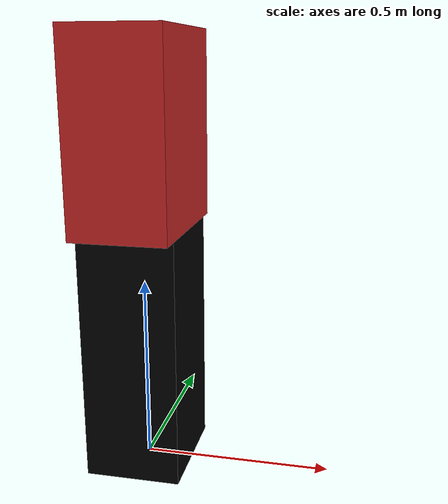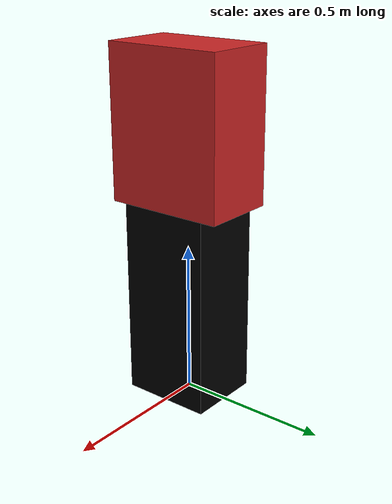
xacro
<?xml version="1.0"?>

<robot name="ar1" xmlns:xacro="http://www.ros.org/wiki/xacro">

	<material name="Black">
        <color rgba="0.0 0.0 0.0 1.0"/>
    </material>

    <material name="Red">
        <color rgba="0.8 0.0 0.0 1.0"/>
    </material>

    <property name="M_PI" value="3.141592"/> <!--Remember Uncle Serezha-->

    <property name="base_mass" value ="8" />
    <property name="base_len" value = "0.25" />
    <property name="base_width" value = "0.3" />
    <property name="base_height" value = "0.65" />

    <property name="body_mass" value = "8" />
    <property name="body_len" value = "0.25" />
    <property name="body_width" value = "0.4" />
    <property name="body_height" value = "0.5" />

    <xacro:macro name="inertial_matrix" params="mass">
      <inertial>
      	<mass value="${mass}" />
        <inertia ixx="1.0" ixy="0.0" ixz="0.0" iyy="0.5" iyz="0.0" izz="1.0" />
      </inertial>
   	</xacro:macro>

   	<xacro:macro name="transmission_block" params="joint_name">
		<transmission name="tran1">
	    	<type>transmission_interface/SimpleTransmission</type>
	    	<joint name="${joint_name}">
	      		<hardwareInterface>PositionJointInterface</hardwareInterface>
	    	</joint>
	    	<actuator name="motor1">
	      		<hardwareInterface>PositionJointInterface</hardwareInterface>
	      		<mechanicalReduction>1</mechanicalReduction>
	    	</actuator>
	  	</transmission>
   	</xacro:macro>

   <link name = "world" />

   <link name="base_link">
   		<visual>
   			<origin xyz="0 0 ${base_height/2}" rpy="0 0 0" />
   			<geometry>
   				<box size= "${base_len} ${base_width} ${base_height}" />
   			</geometry>
   			<material name = "Black" />
   		</visual>

   		<collision>
   			<origin xyz="0 0 ${base_height/2}" rpy="0 0 0" />
   			<geometry>
   				<box size ="${base_len} ${base_width} ${base_height}" />
   			</geometry>
   		</collision>
		<xacro:inertial_matrix mass="${base_mass}" />
   </link>

   <gazebo reference = "base_link">
   	<material>Gazebo/Black</material>
   </gazebo>

   <link name = "body">
   		<visual>
   			<origin xyz="0 0 0" rpy="0 0 0" />
   			<geometry>
   				<box size = "${body_len} ${body_width} ${body_height}" />
   			</geometry>
   		</visual>

   		<collision>
   			<origin xyz = "0 0 ${body_height + body_height/2}" rpy = "0 0 0" />
   			<geometry>
   				<box size = "${body_len} ${body_width} ${body_height}" />
   			</geometry>
   		</collision>
   		<xacro:inertial_matrix mass="${body_mass}" />

   	</link>

   	<gazebo reference = "body">
   		<material>Gazebo/Red</material>
   	</gazebo>

   	<joint name="fixed" type="fixed">
		<parent link="world"/>
		<child link="base_link"/>
	</joint>

	<joint name = "body_joint" type = "revolute">
		<parent link = "base_link" />
		<child link = "body" />
		<origin xyz="0 0 ${base_height + body_height/2}" rpy="0 0 0" />
		<axis xyz="0 0 1" />
		<limit effort = "300" velocity = "1" lower = "-${M_PI/3}" upper = "${M_PI/3}" />
		<dynamics damping = "50" friction = "1" />
	</joint>

	<xacro:transmission_block joint_name="body_joint"/>

	 <!-- ros_control plugin -->
  	<gazebo>
    	<plugin name="gazebo_ros_control" filename="libgazebo_ros_control.so">
      	<robotNamespace>/ar1</robotNamespace>
    	</plugin>
  	</gazebo>
</robot>
